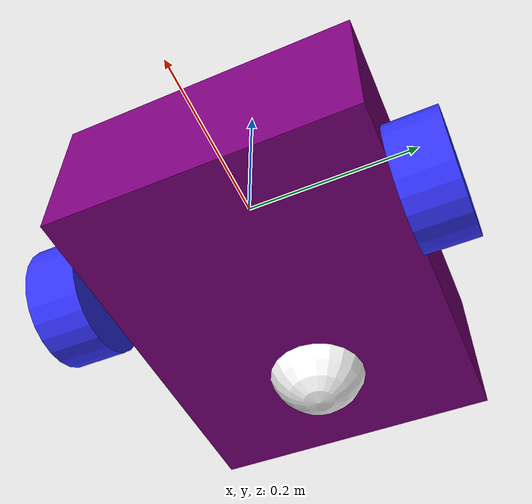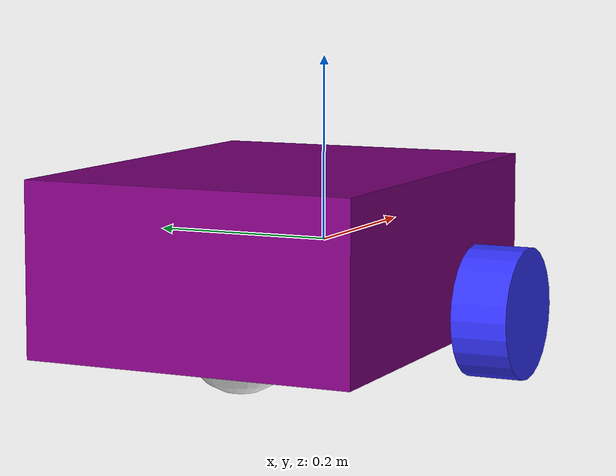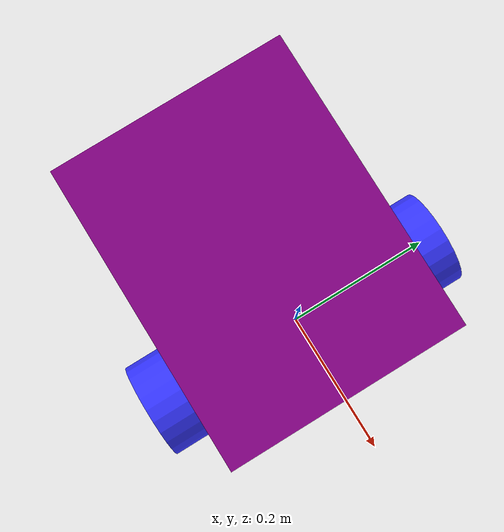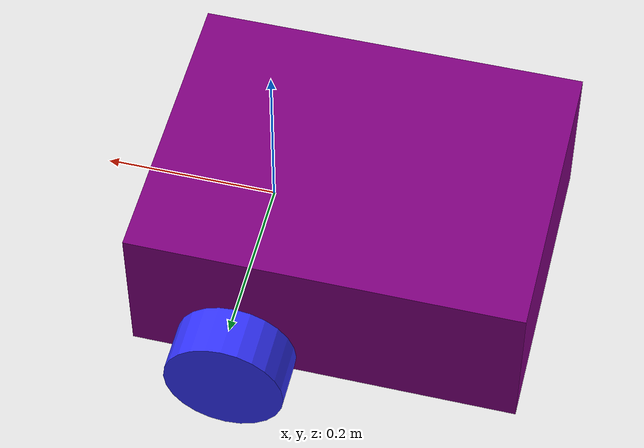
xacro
<?xml version="1.0"?>
<robot xmlns:xacro="http://www.ros.org/wiki/xacro" >

    <xacro:include filename="inertial_macros.xacro"/>

    <xacro:property name="chassis_length" value="0.26"/>
    <xacro:property name="chassis_width" value="0.2"/>
    <xacro:property name="chassis_height" value="0.13"/>
    <xacro:property name="chassis_mass" value="1.0"/>
    <xacro:property name="wheel_radius" value="0.035"/>
    <xacro:property name="wheel_thickness" value="0.04"/>
    <xacro:property name="wheel_mass" value="0.05"/>
    <xacro:property name="wheel_offset_x" value="-0.1"/>
    <xacro:property name="wheel_offset_y" value="0.120"/>
    <xacro:property name="wheel_offset_z" value="-0.065"/>
    <xacro:property name="caster_wheel_radius" value="0.026"/>
    <xacro:property name="caster_wheel_mass" value="-0.1"/>
    <xacro:property name="caster_wheel_offset_x" value="-0.0715"/>
    <xacro:property name="caster_wheel_offset_z" value="${wheel_offset_z - wheel_radius + caster_wheel_radius}"/>

    <material name="white">
        <color rgba="1 1 1 1" />
    </material>

    <material name="purple">
        <color rgba="0.5 0.0 0.5 1.0"/>
    </material>

    <material name="blue">
        <color rgba="0.2 0.2 1 1"/>
    </material>

    <material name="black">
        <color rgba="0 0 0 1"/>
    </material>

    <material name="red">
        <color rgba="1 0 0 1"/>
    </material>

    <!-- BASE LINK -->

    <link name="base_link">

    </link>

    <!-- BASE_FOOTPRINT LINK -->

    <joint name="base_footprint_joint" type="fixed">
        <parent link="base_link"/>
        <child link="base_footprint"/>
        <origin xyz="0 0 0" rpy="0 0 0"/>
    </joint>

    <link name="base_footprint">
    </link>

    <!-- CHASSIS LINK -->

    <joint name="chassis_joint" type="fixed">
        <parent link="base_link"/>
        <child link="chassis"/>
        <origin xyz="-0.1 0 0"/>
    </joint>

    <link name="chassis">
        <visual>
            <origin xyz="0 0 0"/>
            <geometry>
                <box size="0.45 0.35 0.18"/>
            </geometry>
            <material name="purple"/>
        </visual>
        <collision>
            <origin xyz="0 0 0"/>
            <geometry>
                <box size="0.45 0.35 0.18"/>
            </geometry>
        </collision>
        <inertial>
          <mass value="12"/>
          <inertia ixx="0.13" ixy="0.0" ixz="0.0" iyy="0.21" iyz="0.0" izz="0.13"/>
        </inertial>
    </link>

    <gazebo reference="chassis">
        <material>Gazebo/Orange</material>
    </gazebo>

    <!-- LEFT WHEEL LINK -->

    <joint name="left_wheel_joint" type="continuous">
        <parent link="base_link"/>
        <child link="left_wheel"/>
        <origin xyz="0 0.205 -0.065" rpy="-1.5708 0 0" />
        <axis xyz="0 0 1"/>
    </joint>

    <link name="left_wheel">
        <visual>
            <geometry>
                <cylinder radius="0.07" length="0.06"/>
            </geometry>
            <material name="blue"/>
        </visual>
        <collision>
            <geometry>
                <sphere radius="0.07"/>
            </geometry>
        </collision>
        <inertial>
          <mass value="0.7"/>
          <inertia ixx="0.01" ixy="0.0" ixz="0.0" iyy="0.005" iyz="0.0" izz="0.005"/>
        </inertial>
    </link>

    <gazebo reference="left_wheel">
        <material>Gazebo/Blue</material>
    </gazebo>

    <!-- RIGHT WHEEL LINK -->

    <joint name="right_wheel_joint" type="continuous">
        <parent link="base_link"/>
        <child link="right_wheel"/>
        <origin xyz="0 -0.205 -0.065" rpy="-1.5708 0  0" />
        <axis xyz="0 0 1"/>
    </joint>

    <link name="right_wheel">
        <visual>
            <geometry>
                <cylinder radius="0.07" length="0.06"/>
            </geometry>
            <material name="blue"/>
        </visual>
        <collision>
            <geometry>
                <sphere radius="0.07"/>
            </geometry>
        </collision>
        <inertial>
          <mass value="0.7"/>
          <inertia ixx="0.01" ixy="0.0" ixz="0.0" iyy="0.005" iyz="0.0" izz="0.005"/>
        </inertial>
    </link>

    <gazebo reference="right_wheel">
        <material>Gazebo/Blue</material>
    </gazebo>

    <!-- CASTER WHEEL LINK -->

    <joint name="caster_wheel_joint" type="fixed">
        <parent link="chassis"/>
        <child link="caster_wheel"/>
        <origin xyz="-0.1 0 -0.0715"/>
    </joint>

    <link name="caster_wheel">
        <visual>
            <geometry>
                <sphere radius="0.06"/>
            </geometry>
            <material name="white"/>
        </visual>
        <collision>
            <geometry>
                <sphere radius="0.06"/>
            </geometry>
        </collision>
        <inertial>
          <mass value="0.9"/>
          <inertia ixx="0.0001" ixy="0.0" ixz="0.0" iyy="0.0001" iyz="0.0" izz="0.0001"/>
        </inertial>
    </link>

    <gazebo reference="caster_wheel">
        <material>Gazebo/White</material>
        <mu1 value="0.001"/>
        <mu2 value="0.001"/>
    </gazebo>

</robot>
